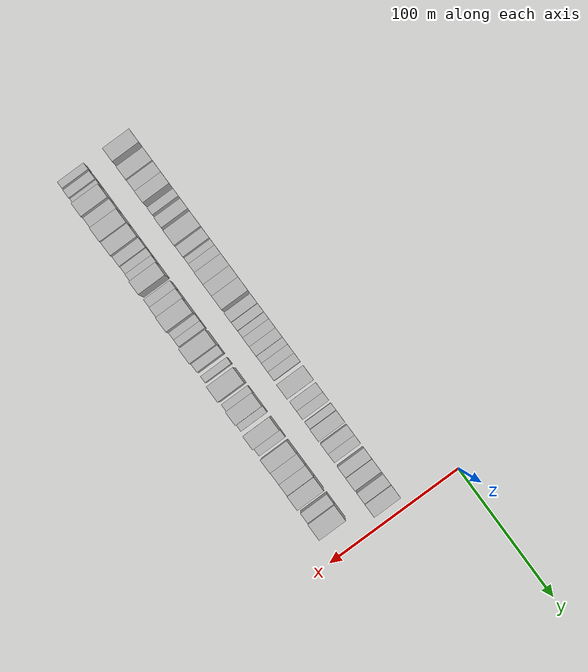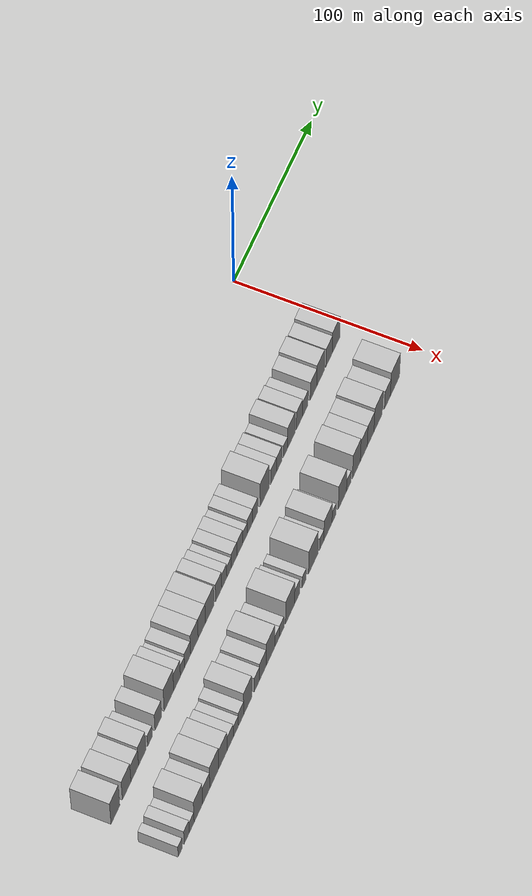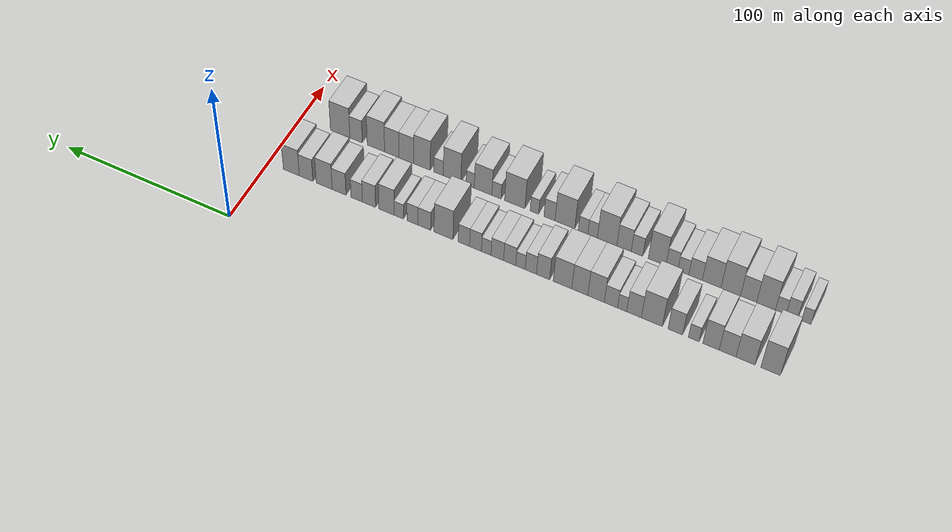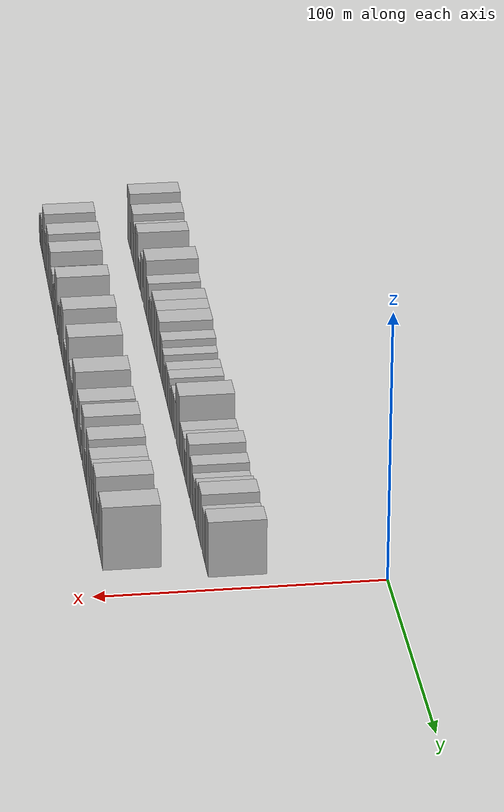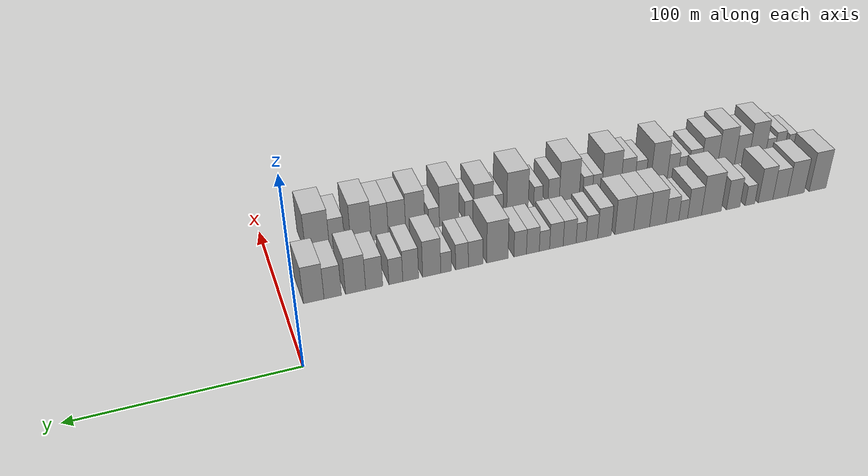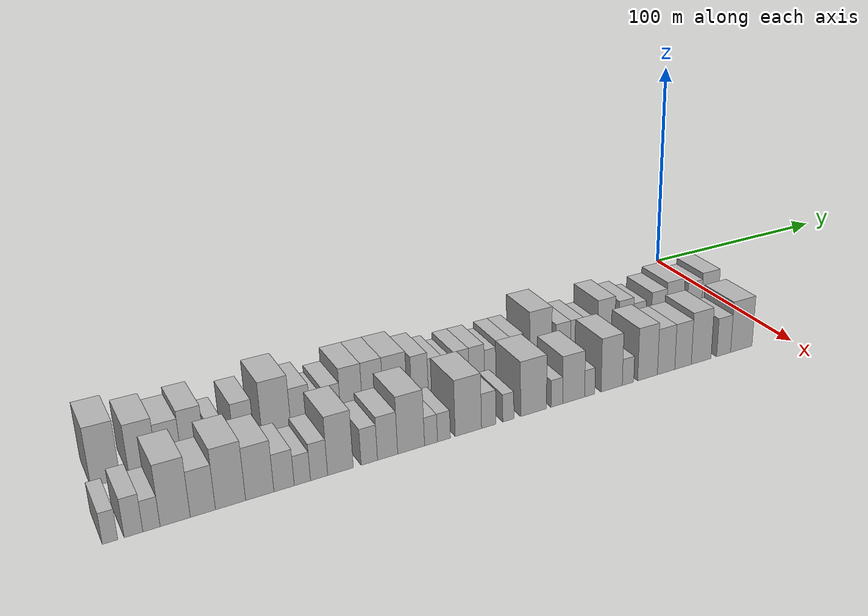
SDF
<sdf version="1.6">
 <world name="default">
  <model name="building_1">
   <static>1</static>
   <pose>50.0000 -281.9514 0 0.000000 0.000000 0.000000</pose>
   <link name="link">
    <pose>0 0 12.00 0 0 0</pose>
    <collision name="collision"><geometry><box><size>20.0000 10.0973 24.0000</size></box></geometry></collision>
    <visual name="visual">
     <cast_shadows>0</cast_shadows>
     <geometry><box><size>20.0000 10.0973 24.0000</size></box></geometry>
     <material>
      <script>
       <uri>model://HANNAS_wall/materials/scripts</uri>
       <uri>model://HANNAS_wall/materials/textures</uri>
       <name>vrc/HANNAS_wall</name>
      </script>
     </material>
    </visual>
   </link>
  </model>
  <model name="building_2">
   <static>1</static>
   <pose>50.0000 -268.9650 0 0.000000 0.000000 0.000000</pose>
   <link name="link">
    <pose>0 0 10.50 0 0 0</pose>
    <collision name="collision"><geometry><box><size>20.0000 9.8755 21.0000</size></box></geometry></collision>
    <visual name="visual">
     <cast_shadows>0</cast_shadows>
     <geometry><box><size>20.0000 9.8755 21.0000</size></box></geometry>
     <material>
      <script>
       <uri>model://HANNAS_wall/materials/scripts</uri>
       <uri>model://HANNAS_wall/materials/textures</uri>
       <name>vrc/HANNAS_wall</name>
      </script>
     </material>
    </visual>
   </link>
  </model>
  <model name="building_3">
   <static>1</static>
   <pose>50.0000 -259.6310 0 0.000000 0.000000 0.000000</pose>
   <link name="link">
    <pose>0 0 9.00 0 0 0</pose>
    <collision name="collision"><geometry><box><size>20.0000 8.7925 18.0000</size></box></geometry></collision>
    <visual name="visual">
     <cast_shadows>0</cast_shadows>
     <geometry><box><size>20.0000 8.7925 18.0000</size></box></geometry>
     <material>
      <script>
       <uri>model://HANNAS_wall/materials/scripts</uri>
       <uri>model://HANNAS_wall/materials/textures</uri>
       <name>vrc/HANNAS_wall</name>
      </script>
     </material>
    </visual>
   </link>
  </model>
  <model name="building_4">
   <static>1</static>
   <pose>50.0000 -250.9372 0 0.000000 0.000000 0.000000</pose>
   <link name="link">
    <pose>0 0 10.50 0 0 0</pose>
    <collision name="collision"><geometry><box><size>20.0000 8.5951 21.0000</size></box></geometry></collision>
    <visual name="visual">
     <cast_shadows>0</cast_shadows>
     <geometry><box><size>20.0000 8.5951 21.0000</size></box></geometry>
     <material>
      <script>
       <uri>model://HANNAS_wall/materials/scripts</uri>
       <uri>model://HANNAS_wall/materials/textures</uri>
       <name>vrc/HANNAS_wall</name>
      </script>
     </material>
    </visual>
   </link>
  </model>
  <model name="building_5">
   <static>1</static>
   <pose>50.0000 -241.8137 0 0.000000 0.000000 0.000000</pose>
   <link name="link">
    <pose>0 0 6.00 0 0 0</pose>
    <collision name="collision"><geometry><box><size>20.0000 5.6519 12.0000</size></box></geometry></collision>
    <visual name="visual">
     <cast_shadows>0</cast_shadows>
     <geometry><box><size>20.0000 5.6519 12.0000</size></box></geometry>
     <material>
      <script>
       <uri>model://HANNAS_wall/materials/scripts</uri>
       <uri>model://HANNAS_wall/materials/textures</uri>
       <name>vrc/HANNAS_wall</name>
      </script>
     </material>
    </visual>
   </link>
  </model>
  <model name="building_6">
   <static>1</static>
   <pose>50.0000 -232.0887 0 0.000000 0.000000 0.000000</pose>
   <link name="link">
    <pose>0 0 9.00 0 0 0</pose>
    <collision name="collision"><geometry><box><size>20.0000 7.7981 18.0000</size></box></geometry></collision>
    <visual name="visual">
     <cast_shadows>0</cast_shadows>
     <geometry><box><size>20.0000 7.7981 18.0000</size></box></geometry>
     <material>
      <script>
       <uri>model://HANNAS_wall/materials/scripts</uri>
       <uri>model://HANNAS_wall/materials/textures</uri>
       <name>vrc/HANNAS_wall</name>
      </script>
     </material>
    </visual>
   </link>
  </model>
  <model name="building_7">
   <static>1</static>
   <pose>50.0000 -219.5472 0 0.000000 0.000000 0.000000</pose>
   <link name="link">
    <pose>0 0 12.00 0 0 0</pose>
    <collision name="collision"><geometry><box><size>20.0000 11.2847 24.0000</size></box></geometry></collision>
    <visual name="visual">
     <cast_shadows>0</cast_shadows>
     <geometry><box><size>20.0000 11.2847 24.0000</size></box></geometry>
     <material>
      <script>
       <uri>model://HANNAS_wall/materials/scripts</uri>
       <uri>model://HANNAS_wall/materials/textures</uri>
       <name>vrc/HANNAS_wall</name>
      </script>
     </material>
    </visual>
   </link>
  </model>
  <model name="building_8">
   <static>1</static>
   <pose>50.0000 -209.9635 0 0.000000 0.000000 0.000000</pose>
   <link name="link">
    <pose>0 0 9.00 0 0 0</pose>
    <collision name="collision"><geometry><box><size>20.0000 7.8828 18.0000</size></box></geometry></collision>
    <visual name="visual">
     <cast_shadows>0</cast_shadows>
     <geometry><box><size>20.0000 7.8828 18.0000</size></box></geometry>
     <material>
      <script>
       <uri>model://HANNAS_wall/materials/scripts</uri>
       <uri>model://HANNAS_wall/materials/textures</uri>
       <name>vrc/HANNAS_wall</name>
      </script>
     </material>
    </visual>
   </link>
  </model>
  <model name="building_9">
   <static>1</static>
   <pose>50.0000 -203.5387 0 0.000000 0.000000 0.000000</pose>
   <link name="link">
    <pose>0 0 6.00 0 0 0</pose>
    <collision name="collision"><geometry><box><size>20.0000 4.9668 12.0000</size></box></geometry></collision>
    <visual name="visual">
     <cast_shadows>0</cast_shadows>
     <geometry><box><size>20.0000 4.9668 12.0000</size></box></geometry>
     <material>
      <script>
       <uri>model://HANNAS_wall/materials/scripts</uri>
       <uri>model://HANNAS_wall/materials/textures</uri>
       <name>vrc/HANNAS_wall</name>
      </script>
     </material>
    </visual>
   </link>
  </model>
  <model name="building_10">
   <static>1</static>
   <pose>50.0000 -197.4601 0 0.000000 0.000000 0.000000</pose>
   <link name="link">
    <pose>0 0 7.50 0 0 0</pose>
    <collision name="collision"><geometry><box><size>20.0000 7.1904 15.0000</size></box></geometry></collision>
    <visual name="visual">
     <cast_shadows>0</cast_shadows>
     <geometry><box><size>20.0000 7.1904 15.0000</size></box></geometry>
     <material>
      <script>
       <uri>model://HANNAS_wall/materials/scripts</uri>
       <uri>model://HANNAS_wall/materials/textures</uri>
       <name>vrc/HANNAS_wall</name>
      </script>
     </material>
    </visual>
   </link>
  </model>
  <model name="building_11">
   <static>1</static>
   <pose>50.0000 -189.3527 0 0.000000 0.000000 0.000000</pose>
   <link name="link">
    <pose>0 0 10.50 0 0 0</pose>
    <collision name="collision"><geometry><box><size>20.0000 9.0244 21.0000</size></box></geometry></collision>
    <visual name="visual">
     <cast_shadows>0</cast_shadows>
     <geometry><box><size>20.0000 9.0244 21.0000</size></box></geometry>
     <material>
      <script>
       <uri>model://HANNAS_wall/materials/scripts</uri>
       <uri>model://HANNAS_wall/materials/textures</uri>
       <name>vrc/HANNAS_wall</name>
      </script>
     </material>
    </visual>
   </link>
  </model>
  <model name="building_12">
   <static>1</static>
   <pose>50.0000 -180.4518 0 0.000000 0.000000 0.000000</pose>
   <link name="link">
    <pose>0 0 10.50 0 0 0</pose>
    <collision name="collision"><geometry><box><size>20.0000 8.7775 21.0000</size></box></geometry></collision>
    <visual name="visual">
     <cast_shadows>0</cast_shadows>
     <geometry><box><size>20.0000 8.7775 21.0000</size></box></geometry>
     <material>
      <script>
       <uri>model://HANNAS_wall/materials/scripts</uri>
       <uri>model://HANNAS_wall/materials/textures</uri>
       <name>vrc/HANNAS_wall</name>
      </script>
     </material>
    </visual>
   </link>
  </model>
  <model name="building_13">
   <static>1</static>
   <pose>50.0000 -170.9487 0 0.000000 0.000000 0.000000</pose>
   <link name="link">
    <pose>0 0 10.50 0 0 0</pose>
    <collision name="collision"><geometry><box><size>20.0000 10.2286 21.0000</size></box></geometry></collision>
    <visual name="visual">
     <cast_shadows>0</cast_shadows>
     <geometry><box><size>20.0000 10.2286 21.0000</size></box></geometry>
     <material>
      <script>
       <uri>model://HANNAS_wall/materials/scripts</uri>
       <uri>model://HANNAS_wall/materials/textures</uri>
       <name>vrc/HANNAS_wall</name>
      </script>
     </material>
    </visual>
   </link>
  </model>
  <model name="building_14">
   <static>1</static>
   <pose>50.0000 -160.1610 0 0.000000 0.000000 0.000000</pose>
   <link name="link">
    <pose>0 0 9.00 0 0 0</pose>
    <collision name="collision"><geometry><box><size>20.0000 7.3468 18.0000</size></box></geometry></collision>
    <visual name="visual">
     <cast_shadows>0</cast_shadows>
     <geometry><box><size>20.0000 7.3468 18.0000</size></box></geometry>
     <material>
      <script>
       <uri>model://HANNAS_wall/materials/scripts</uri>
       <uri>model://HANNAS_wall/materials/textures</uri>
       <name>vrc/HANNAS_wall</name>
      </script>
     </material>
    </visual>
   </link>
  </model>
  <model name="building_15">
   <static>1</static>
   <pose>50.0000 -153.3467 0 0.000000 0.000000 0.000000</pose>
   <link name="link">
    <pose>0 0 7.50 0 0 0</pose>
    <collision name="collision"><geometry><box><size>20.0000 6.2819 15.0000</size></box></geometry></collision>
    <visual name="visual">
     <cast_shadows>0</cast_shadows>
     <geometry><box><size>20.0000 6.2819 15.0000</size></box></geometry>
     <material>
      <script>
       <uri>model://HANNAS_wall/materials/scripts</uri>
       <uri>model://HANNAS_wall/materials/textures</uri>
       <name>vrc/HANNAS_wall</name>
      </script>
     </material>
    </visual>
   </link>
  </model>
  <model name="building_16">
   <static>1</static>
   <pose>50.0000 -147.5695 0 0.000000 0.000000 0.000000</pose>
   <link name="link">
    <pose>0 0 6.00 0 0 0</pose>
    <collision name="collision"><geometry><box><size>20.0000 5.2724 12.0000</size></box></geometry></collision>
    <visual name="visual">
     <cast_shadows>0</cast_shadows>
     <geometry><box><size>20.0000 5.2724 12.0000</size></box></geometry>
     <material>
      <script>
       <uri>model://HANNAS_wall/materials/scripts</uri>
       <uri>model://HANNAS_wall/materials/textures</uri>
       <name>vrc/HANNAS_wall</name>
      </script>
     </material>
    </visual>
   </link>
  </model>
  <model name="building_17">
   <static>1</static>
   <pose>50.0000 -141.4911 0 0.000000 0.000000 0.000000</pose>
   <link name="link">
    <pose>0 0 7.50 0 0 0</pose>
    <collision name="collision"><geometry><box><size>20.0000 6.8844 15.0000</size></box></geometry></collision>
    <visual name="visual">
     <cast_shadows>0</cast_shadows>
     <geometry><box><size>20.0000 6.8844 15.0000</size></box></geometry>
     <material>
      <script>
       <uri>model://HANNAS_wall/materials/scripts</uri>
       <uri>model://HANNAS_wall/materials/textures</uri>
       <name>vrc/HANNAS_wall</name>
      </script>
     </material>
    </visual>
   </link>
  </model>
  <model name="building_18">
   <static>1</static>
   <pose>50.0000 -134.4812 0 0.000000 0.000000 0.000000</pose>
   <link name="link">
    <pose>0 0 7.50 0 0 0</pose>
    <collision name="collision"><geometry><box><size>20.0000 7.1355 15.0000</size></box></geometry></collision>
    <visual name="visual">
     <cast_shadows>0</cast_shadows>
     <geometry><box><size>20.0000 7.1355 15.0000</size></box></geometry>
     <material>
      <script>
       <uri>model://HANNAS_wall/materials/scripts</uri>
       <uri>model://HANNAS_wall/materials/textures</uri>
       <name>vrc/HANNAS_wall</name>
      </script>
     </material>
    </visual>
   </link>
  </model>
  <model name="building_19">
   <static>1</static>
   <pose>50.0000 -128.2064 0 0.000000 0.000000 0.000000</pose>
   <link name="link">
    <pose>0 0 6.00 0 0 0</pose>
    <collision name="collision"><geometry><box><size>20.0000 5.4142 12.0000</size></box></geometry></collision>
    <visual name="visual">
     <cast_shadows>0</cast_shadows>
     <geometry><box><size>20.0000 5.4142 12.0000</size></box></geometry>
     <material>
      <script>
       <uri>model://HANNAS_wall/materials/scripts</uri>
       <uri>model://HANNAS_wall/materials/textures</uri>
       <name>vrc/HANNAS_wall</name>
      </script>
     </material>
    </visual>
   </link>
  </model>
  <model name="building_20">
   <static>1</static>
   <pose>50.0000 -122.1646 0 0.000000 0.000000 0.000000</pose>
   <link name="link">
    <pose>0 0 7.50 0 0 0</pose>
    <collision name="collision"><geometry><box><size>20.0000 6.6693 15.0000</size></box></geometry></collision>
    <visual name="visual">
     <cast_shadows>0</cast_shadows>
     <geometry><box><size>20.0000 6.6693 15.0000</size></box></geometry>
     <material>
      <script>
       <uri>model://HANNAS_wall/materials/scripts</uri>
       <uri>model://HANNAS_wall/materials/textures</uri>
       <name>vrc/HANNAS_wall</name>
      </script>
     </material>
    </visual>
   </link>
  </model>
  <model name="building_21">
   <static>1</static>
   <pose>50.0000 -115.5677 0 0.000000 0.000000 0.000000</pose>
   <link name="link">
    <pose>0 0 7.50 0 0 0</pose>
    <collision name="collision"><geometry><box><size>20.0000 6.5244 15.0000</size></box></geometry></collision>
    <visual name="visual">
     <cast_shadows>0</cast_shadows>
     <geometry><box><size>20.0000 6.5244 15.0000</size></box></geometry>
     <material>
      <script>
       <uri>model://HANNAS_wall/materials/scripts</uri>
       <uri>model://HANNAS_wall/materials/textures</uri>
       <name>vrc/HANNAS_wall</name>
      </script>
     </material>
    </visual>
   </link>
  </model>
  <model name="building_22">
   <static>1</static>
   <pose>50.0000 -103.8464 0 0.000000 0.000000 0.000000</pose>
   <link name="link">
    <pose>0 0 12.00 0 0 0</pose>
    <collision name="collision"><geometry><box><size>20.0000 10.9184 24.0000</size></box></geometry></collision>
    <visual name="visual">
     <cast_shadows>0</cast_shadows>
     <geometry><box><size>20.0000 10.9184 24.0000</size></box></geometry>
     <material>
      <script>
       <uri>model://HANNAS_wall/materials/scripts</uri>
       <uri>model://HANNAS_wall/materials/textures</uri>
       <name>vrc/HANNAS_wall</name>
      </script>
     </material>
    </visual>
   </link>
  </model>
  <model name="building_23">
   <static>1</static>
   <pose>50.0000 -92.7179 0 0.000000 0.000000 0.000000</pose>
   <link name="link">
    <pose>0 0 7.50 0 0 0</pose>
    <collision name="collision"><geometry><box><size>20.0000 7.3385 15.0000</size></box></geometry></collision>
    <visual name="visual">
     <cast_shadows>0</cast_shadows>
     <geometry><box><size>20.0000 7.3385 15.0000</size></box></geometry>
     <material>
      <script>
       <uri>model://HANNAS_wall/materials/scripts</uri>
       <uri>model://HANNAS_wall/materials/textures</uri>
       <name>vrc/HANNAS_wall</name>
      </script>
     </material>
    </visual>
   </link>
  </model>
  <model name="building_24">
   <static>1</static>
   <pose>50.0000 -85.8513 0 0.000000 0.000000 0.000000</pose>
   <link name="link">
    <pose>0 0 7.50 0 0 0</pose>
    <collision name="collision"><geometry><box><size>20.0000 6.3947 15.0000</size></box></geometry></collision>
    <visual name="visual">
     <cast_shadows>0</cast_shadows>
     <geometry><box><size>20.0000 6.3947 15.0000</size></box></geometry>
     <material>
      <script>
       <uri>model://HANNAS_wall/materials/scripts</uri>
       <uri>model://HANNAS_wall/materials/textures</uri>
       <name>vrc/HANNAS_wall</name>
      </script>
     </material>
    </visual>
   </link>
  </model>
  <model name="building_25">
   <static>1</static>
   <pose>50.0000 -77.9484 0 0.000000 0.000000 0.000000</pose>
   <link name="link">
    <pose>0 0 6.00 0 0 0</pose>
    <collision name="collision"><geometry><box><size>20.0000 5.4112 12.0000</size></box></geometry></collision>
    <visual name="visual">
     <cast_shadows>0</cast_shadows>
     <geometry><box><size>20.0000 5.4112 12.0000</size></box></geometry>
     <material>
      <script>
       <uri>model://HANNAS_wall/materials/scripts</uri>
       <uri>model://HANNAS_wall/materials/textures</uri>
       <name>vrc/HANNAS_wall</name>
      </script>
     </material>
    </visual>
   </link>
  </model>
  <model name="building_26">
   <static>1</static>
   <pose>50.0000 -70.7677 0 0.000000 0.000000 0.000000</pose>
   <link name="link">
    <pose>0 0 10.50 0 0 0</pose>
    <collision name="collision"><geometry><box><size>20.0000 8.9503 21.0000</size></box></geometry></collision>
    <visual name="visual">
     <cast_shadows>0</cast_shadows>
     <geometry><box><size>20.0000 8.9503 21.0000</size></box></geometry>
     <material>
      <script>
       <uri>model://HANNAS_wall/materials/scripts</uri>
       <uri>model://HANNAS_wall/materials/textures</uri>
       <name>vrc/HANNAS_wall</name>
      </script>
     </material>
    </visual>
   </link>
  </model>
  <model name="building_27">
   <static>1</static>
   <pose>50.0000 -60.4169 0 0.000000 0.000000 0.000000</pose>
   <link name="link">
    <pose>0 0 9.00 0 0 0</pose>
    <collision name="collision"><geometry><box><size>20.0000 7.7512 18.0000</size></box></geometry></collision>
    <visual name="visual">
     <cast_shadows>0</cast_shadows>
     <geometry><box><size>20.0000 7.7512 18.0000</size></box></geometry>
     <material>
      <script>
       <uri>model://HANNAS_wall/materials/scripts</uri>
       <uri>model://HANNAS_wall/materials/textures</uri>
       <name>vrc/HANNAS_wall</name>
      </script>
     </material>
    </visual>
   </link>
  </model>
  <model name="building_28">
   <static>1</static>
   <pose>50.0000 -53.1641 0 0.000000 0.000000 0.000000</pose>
   <link name="link">
    <pose>0 0 7.50 0 0 0</pose>
    <collision name="collision"><geometry><box><size>20.0000 6.7545 15.0000</size></box></geometry></collision>
    <visual name="visual">
     <cast_shadows>0</cast_shadows>
     <geometry><box><size>20.0000 6.7545 15.0000</size></box></geometry>
     <material>
      <script>
       <uri>model://HANNAS_wall/materials/scripts</uri>
       <uri>model://HANNAS_wall/materials/textures</uri>
       <name>vrc/HANNAS_wall</name>
      </script>
     </material>
    </visual>
   </link>
  </model>
  <model name="building_29">
   <static>1</static>
   <pose>50.0000 -42.6650 0 0.000000 0.000000 0.000000</pose>
   <link name="link">
    <pose>0 0 9.00 0 0 0</pose>
    <collision name="collision"><geometry><box><size>20.0000 8.2437 18.0000</size></box></geometry></collision>
    <visual name="visual">
     <cast_shadows>0</cast_shadows>
     <geometry><box><size>20.0000 8.2437 18.0000</size></box></geometry>
     <material>
      <script>
       <uri>model://HANNAS_wall/materials/scripts</uri>
       <uri>model://HANNAS_wall/materials/textures</uri>
       <name>vrc/HANNAS_wall</name>
      </script>
     </material>
    </visual>
   </link>
  </model>
  <model name="building_30">
   <static>1</static>
   <pose>50.0000 -33.7552 0 0.000000 0.000000 0.000000</pose>
   <link name="link">
    <pose>0 0 10.50 0 0 0</pose>
    <collision name="collision"><geometry><box><size>20.0000 9.5758 21.0000</size></box></geometry></collision>
    <visual name="visual">
     <cast_shadows>0</cast_shadows>
     <geometry><box><size>20.0000 9.5758 21.0000</size></box></geometry>
     <material>
      <script>
       <uri>model://HANNAS_wall/materials/scripts</uri>
       <uri>model://HANNAS_wall/materials/textures</uri>
       <name>vrc/HANNAS_wall</name>
      </script>
     </material>
    </visual>
   </link>
  </model>
  <model name="building_31">
   <static>1</static>
   <pose>50.0000 -22.8692 0 0.000000 0.000000 0.000000</pose>
   <link name="link">
    <pose>0 0 9.00 0 0 0</pose>
    <collision name="collision"><geometry><box><size>20.0000 8.1962 18.0000</size></box></geometry></collision>
    <visual name="visual">
     <cast_shadows>0</cast_shadows>
     <geometry><box><size>20.0000 8.1962 18.0000</size></box></geometry>
     <material>
      <script>
       <uri>model://HANNAS_wall/materials/scripts</uri>
       <uri>model://HANNAS_wall/materials/textures</uri>
       <name>vrc/HANNAS_wall</name>
      </script>
     </material>
    </visual>
   </link>
  </model>
  <model name="building_32">
   <static>1</static>
   <pose>50.0000 -13.9225 0 0.000000 0.000000 0.000000</pose>
   <link name="link">
    <pose>0 0 10.50 0 0 0</pose>
    <collision name="collision"><geometry><box><size>20.0000 9.6973 21.0000</size></box></geometry></collision>
    <visual name="visual">
     <cast_shadows>0</cast_shadows>
     <geometry><box><size>20.0000 9.6973 21.0000</size></box></geometry>
     <material>
      <script>
       <uri>model://HANNAS_wall/materials/scripts</uri>
       <uri>model://HANNAS_wall/materials/textures</uri>
       <name>vrc/HANNAS_wall</name>
      </script>
     </material>
    </visual>
   </link>
  </model>
  <model name="building_67">
   <static>1</static>
   <pose>85.0000 -287.5393 0 0.000000 0.000000 0.000000</pose>
   <link name="link">
    <pose>0 0 6.00 0 0 0</pose>
    <collision name="collision"><geometry><box><size>20.0000 4.9214 12.0000</size></box></geometry></collision>
    <visual name="visual">
     <cast_shadows>0</cast_shadows>
     <geometry><box><size>20.0000 4.9214 12.0000</size></box></geometry>
     <material>
      <script>
       <uri>model://HANNAS_wall/materials/scripts</uri>
       <uri>model://HANNAS_wall/materials/textures</uri>
       <name>vrc/HANNAS_wall</name>
      </script>
     </material>
    </visual>
   </link>
  </model>
  <model name="building_68">
   <static>1</static>
   <pose>85.0000 -280.0650 0 0.000000 0.000000 0.000000</pose>
   <link name="link">
    <pose>0 0 7.50 0 0 0</pose>
    <collision name="collision"><geometry><box><size>20.0000 6.0271 15.0000</size></box></geometry></collision>
    <visual name="visual">
     <cast_shadows>0</cast_shadows>
     <geometry><box><size>20.0000 6.0271 15.0000</size></box></geometry>
     <material>
      <script>
       <uri>model://HANNAS_wall/materials/scripts</uri>
       <uri>model://HANNAS_wall/materials/textures</uri>
       <name>vrc/HANNAS_wall</name>
      </script>
     </material>
    </visual>
   </link>
  </model>
  <model name="building_69">
   <static>1</static>
   <pose>85.0000 -274.2433 0 0.000000 0.000000 0.000000</pose>
   <link name="link">
    <pose>0 0 6.00 0 0 0</pose>
    <collision name="collision"><geometry><box><size>20.0000 5.6163 12.0000</size></box></geometry></collision>
    <visual name="visual">
     <cast_shadows>0</cast_shadows>
     <geometry><box><size>20.0000 5.6163 12.0000</size></box></geometry>
     <material>
      <script>
       <uri>model://HANNAS_wall/materials/scripts</uri>
       <uri>model://HANNAS_wall/materials/textures</uri>
       <name>vrc/HANNAS_wall</name>
      </script>
     </material>
    </visual>
   </link>
  </model>
  <model name="building_70">
   <static>1</static>
   <pose>85.0000 -266.4212 0 0.000000 0.000000 0.000000</pose>
   <link name="link">
    <pose>0 0 12.00 0 0 0</pose>
    <collision name="collision"><geometry><box><size>20.0000 10.0279 24.0000</size></box></geometry></collision>
    <visual name="visual">
     <cast_shadows>0</cast_shadows>
     <geometry><box><size>20.0000 10.0279 24.0000</size></box></geometry>
     <material>
      <script>
       <uri>model://HANNAS_wall/materials/scripts</uri>
       <uri>model://HANNAS_wall/materials/textures</uri>
       <name>vrc/HANNAS_wall</name>
      </script>
     </material>
    </visual>
   </link>
  </model>
  <model name="building_71">
   <static>1</static>
   <pose>85.0000 -257.1396 0 0.000000 0.000000 0.000000</pose>
   <link name="link">
    <pose>0 0 9.00 0 0 0</pose>
    <collision name="collision"><geometry><box><size>20.0000 8.5353 18.0000</size></box></geometry></collision>
    <visual name="visual">
     <cast_shadows>0</cast_shadows>
     <geometry><box><size>20.0000 8.5353 18.0000</size></box></geometry>
     <material>
      <script>
       <uri>model://HANNAS_wall/materials/scripts</uri>
       <uri>model://HANNAS_wall/materials/textures</uri>
       <name>vrc/HANNAS_wall</name>
      </script>
     </material>
    </visual>
   </link>
  </model>
  <model name="building_72">
   <static>1</static>
   <pose>85.0000 -247.6335 0 0.000000 0.000000 0.000000</pose>
   <link name="link">
    <pose>0 0 12.00 0 0 0</pose>
    <collision name="collision"><geometry><box><size>20.0000 10.4768 24.0000</size></box></geometry></collision>
    <visual name="visual">
     <cast_shadows>0</cast_shadows>
     <geometry><box><size>20.0000 10.4768 24.0000</size></box></geometry>
     <material>
      <script>
       <uri>model://HANNAS_wall/materials/scripts</uri>
       <uri>model://HANNAS_wall/materials/textures</uri>
       <name>vrc/HANNAS_wall</name>
      </script>
     </material>
    </visual>
   </link>
  </model>
  <model name="building_73">
   <static>1</static>
   <pose>85.0000 -237.3695 0 0.000000 0.000000 0.000000</pose>
   <link name="link">
    <pose>0 0 10.50 0 0 0</pose>
    <collision name="collision"><geometry><box><size>20.0000 10.0512 21.0000</size></box></geometry></collision>
    <visual name="visual">
     <cast_shadows>0</cast_shadows>
     <geometry><box><size>20.0000 10.0512 21.0000</size></box></geometry>
     <material>
      <script>
       <uri>model://HANNAS_wall/materials/scripts</uri>
       <uri>model://HANNAS_wall/materials/textures</uri>
       <name>vrc/HANNAS_wall</name>
      </script>
     </material>
    </visual>
   </link>
  </model>
  <model name="building_74">
   <static>1</static>
   <pose>85.0000 -228.6623 0 0.000000 0.000000 0.000000</pose>
   <link name="link">
    <pose>0 0 7.50 0 0 0</pose>
    <collision name="collision"><geometry><box><size>20.0000 7.3632 15.0000</size></box></geometry></collision>
    <visual name="visual">
     <cast_shadows>0</cast_shadows>
     <geometry><box><size>20.0000 7.3632 15.0000</size></box></geometry>
     <material>
      <script>
       <uri>model://HANNAS_wall/materials/scripts</uri>
       <uri>model://HANNAS_wall/materials/textures</uri>
       <name>vrc/HANNAS_wall</name>
      </script>
     </material>
    </visual>
   </link>
  </model>
  <model name="building_75">
   <static>1</static>
   <pose>85.0000 -221.9935 0 0.000000 0.000000 0.000000</pose>
   <link name="link">
    <pose>0 0 6.00 0 0 0</pose>
    <collision name="collision"><geometry><box><size>20.0000 5.9743 12.0000</size></box></geometry></collision>
    <visual name="visual">
     <cast_shadows>0</cast_shadows>
     <geometry><box><size>20.0000 5.9743 12.0000</size></box></geometry>
     <material>
      <script>
       <uri>model://HANNAS_wall/materials/scripts</uri>
       <uri>model://HANNAS_wall/materials/textures</uri>
       <name>vrc/HANNAS_wall</name>
      </script>
     </material>
    </visual>
   </link>
  </model>
  <model name="building_76">
   <static>1</static>
   <pose>85.0000 -215.7950 0 0.000000 0.000000 0.000000</pose>
   <link name="link">
    <pose>0 0 7.50 0 0 0</pose>
    <collision name="collision"><geometry><box><size>20.0000 6.4229 15.0000</size></box></geometry></collision>
    <visual name="visual">
     <cast_shadows>0</cast_shadows>
     <geometry><box><size>20.0000 6.4229 15.0000</size></box></geometry>
     <material>
      <script>
       <uri>model://HANNAS_wall/materials/scripts</uri>
       <uri>model://HANNAS_wall/materials/textures</uri>
       <name>vrc/HANNAS_wall</name>
      </script>
     </material>
    </visual>
   </link>
  </model>
  <model name="building_77">
   <static>1</static>
   <pose>85.0000 -207.7056 0 0.000000 0.000000 0.000000</pose>
   <link name="link">
    <pose>0 0 12.00 0 0 0</pose>
    <collision name="collision"><geometry><box><size>20.0000 9.7557 24.0000</size></box></geometry></collision>
    <visual name="visual">
     <cast_shadows>0</cast_shadows>
     <geometry><box><size>20.0000 9.7557 24.0000</size></box></geometry>
     <material>
      <script>
       <uri>model://HANNAS_wall/materials/scripts</uri>
       <uri>model://HANNAS_wall/materials/textures</uri>
       <name>vrc/HANNAS_wall</name>
      </script>
     </material>
    </visual>
   </link>
  </model>
  <model name="building_78">
   <static>1</static>
   <pose>85.0000 -196.6338 0 0.000000 0.000000 0.000000</pose>
   <link name="link">
    <pose>0 0 7.50 0 0 0</pose>
    <collision name="collision"><geometry><box><size>20.0000 6.3879 15.0000</size></box></geometry></collision>
    <visual name="visual">
     <cast_shadows>0</cast_shadows>
     <geometry><box><size>20.0000 6.3879 15.0000</size></box></geometry>
     <material>
      <script>
       <uri>model://HANNAS_wall/materials/scripts</uri>
       <uri>model://HANNAS_wall/materials/textures</uri>
       <name>vrc/HANNAS_wall</name>
      </script>
     </material>
    </visual>
   </link>
  </model>
  <model name="building_79">
   <static>1</static>
   <pose>85.0000 -189.4396 0 0.000000 0.000000 0.000000</pose>
   <link name="link">
    <pose>0 0 9.00 0 0 0</pose>
    <collision name="collision"><geometry><box><size>20.0000 8.0004 18.0000</size></box></geometry></collision>
    <visual name="visual">
     <cast_shadows>0</cast_shadows>
     <geometry><box><size>20.0000 8.0004 18.0000</size></box></geometry>
     <material>
      <script>
       <uri>model://HANNAS_wall/materials/scripts</uri>
       <uri>model://HANNAS_wall/materials/textures</uri>
       <name>vrc/HANNAS_wall</name>
      </script>
     </material>
    </visual>
   </link>
  </model>
  <model name="building_80">
   <static>1</static>
   <pose>85.0000 -180.0102 0 0.000000 0.000000 0.000000</pose>
   <link name="link">
    <pose>0 0 12.00 0 0 0</pose>
    <collision name="collision"><geometry><box><size>20.0000 10.8585 24.0000</size></box></geometry></collision>
    <visual name="visual">
     <cast_shadows>0</cast_shadows>
     <geometry><box><size>20.0000 10.8585 24.0000</size></box></geometry>
     <material>
      <script>
       <uri>model://HANNAS_wall/materials/scripts</uri>
       <uri>model://HANNAS_wall/materials/textures</uri>
       <name>vrc/HANNAS_wall</name>
      </script>
     </material>
    </visual>
   </link>
  </model>
  <model name="building_81">
   <static>1</static>
   <pose>85.0000 -171.9192 0 0.000000 0.000000 0.000000</pose>
   <link name="link">
    <pose>0 0 6.00 0 0 0</pose>
    <collision name="collision"><geometry><box><size>20.0000 5.3234 12.0000</size></box></geometry></collision>
    <visual name="visual">
     <cast_shadows>0</cast_shadows>
     <geometry><box><size>20.0000 5.3234 12.0000</size></box></geometry>
     <material>
      <script>
       <uri>model://HANNAS_wall/materials/scripts</uri>
       <uri>model://HANNAS_wall/materials/textures</uri>
       <name>vrc/HANNAS_wall</name>
      </script>
     </material>
    </visual>
   </link>
  </model>
  <model name="building_82">
   <static>1</static>
   <pose>85.0000 -166.5647 0 0.000000 0.000000 0.000000</pose>
   <link name="link">
    <pose>0 0 6.00 0 0 0</pose>
    <collision name="collision"><geometry><box><size>20.0000 5.3856 12.0000</size></box></geometry></collision>
    <visual name="visual">
     <cast_shadows>0</cast_shadows>
     <geometry><box><size>20.0000 5.3856 12.0000</size></box></geometry>
     <material>
      <script>
       <uri>model://HANNAS_wall/materials/scripts</uri>
       <uri>model://HANNAS_wall/materials/textures</uri>
       <name>vrc/HANNAS_wall</name>
      </script>
     </material>
    </visual>
   </link>
  </model>
  <model name="building_83">
   <static>1</static>
   <pose>85.0000 -156.2718 0 0.000000 0.000000 0.000000</pose>
   <link name="link">
    <pose>0 0 12.00 0 0 0</pose>
    <collision name="collision"><geometry><box><size>20.0000 11.2002 24.0000</size></box></geometry></collision>
    <visual name="visual">
     <cast_shadows>0</cast_shadows>
     <geometry><box><size>20.0000 11.2002 24.0000</size></box></geometry>
     <material>
      <script>
       <uri>model://HANNAS_wall/materials/scripts</uri>
       <uri>model://HANNAS_wall/materials/textures</uri>
       <name>vrc/HANNAS_wall</name>
      </script>
     </material>
    </visual>
   </link>
  </model>
  <model name="building_84">
   <static>1</static>
   <pose>85.0000 -147.5368 0 0.000000 0.000000 0.000000</pose>
   <link name="link">
    <pose>0 0 7.50 0 0 0</pose>
    <collision name="collision"><geometry><box><size>20.0000 6.2699 15.0000</size></box></geometry></collision>
    <visual name="visual">
     <cast_shadows>0</cast_shadows>
     <geometry><box><size>20.0000 6.2699 15.0000</size></box></geometry>
     <material>
      <script>
       <uri>model://HANNAS_wall/materials/scripts</uri>
       <uri>model://HANNAS_wall/materials/textures</uri>
       <name>vrc/HANNAS_wall</name>
      </script>
     </material>
    </visual>
   </link>
  </model>
  <model name="building_85">
   <static>1</static>
   <pose>85.0000 -138.9657 0 0.000000 0.000000 0.000000</pose>
   <link name="link">
    <pose>0 0 6.00 0 0 0</pose>
    <collision name="collision"><geometry><box><size>20.0000 4.8723 12.0000</size></box></geometry></collision>
    <visual name="visual">
     <cast_shadows>0</cast_shadows>
     <geometry><box><size>20.0000 4.8723 12.0000</size></box></geometry>
     <material>
      <script>
       <uri>model://HANNAS_wall/materials/scripts</uri>
       <uri>model://HANNAS_wall/materials/textures</uri>
       <name>vrc/HANNAS_wall</name>
      </script>
     </material>
    </visual>
   </link>
  </model>
  <model name="building_86">
   <static>1</static>
   <pose>85.0000 -127.6706 0 0.000000 0.000000 0.000000</pose>
   <link name="link">
    <pose>0 0 12.00 0 0 0</pose>
    <collision name="collision"><geometry><box><size>20.0000 11.7180 24.0000</size></box></geometry></collision>
    <visual name="visual">
     <cast_shadows>0</cast_shadows>
     <geometry><box><size>20.0000 11.7180 24.0000</size></box></geometry>
     <material>
      <script>
       <uri>model://HANNAS_wall/materials/scripts</uri>
       <uri>model://HANNAS_wall/materials/textures</uri>
       <name>vrc/HANNAS_wall</name>
      </script>
     </material>
    </visual>
   </link>
  </model>
  <model name="building_87">
   <static>1</static>
   <pose>85.0000 -117.1279 0 0.000000 0.000000 0.000000</pose>
   <link name="link">
    <pose>0 0 6.00 0 0 0</pose>
    <collision name="collision"><geometry><box><size>20.0000 5.3674 12.0000</size></box></geometry></collision>
    <visual name="visual">
     <cast_shadows>0</cast_shadows>
     <geometry><box><size>20.0000 5.3674 12.0000</size></box></geometry>
     <material>
      <script>
       <uri>model://HANNAS_wall/materials/scripts</uri>
       <uri>model://HANNAS_wall/materials/textures</uri>
       <name>vrc/HANNAS_wall</name>
      </script>
     </material>
    </visual>
   </link>
  </model>
  <model name="building_88">
   <static>1</static>
   <pose>85.0000 -109.2899 0 0.000000 0.000000 0.000000</pose>
   <link name="link">
    <pose>0 0 10.50 0 0 0</pose>
    <collision name="collision"><geometry><box><size>20.0000 10.3087 21.0000</size></box></geometry></collision>
    <visual name="visual">
     <cast_shadows>0</cast_shadows>
     <geometry><box><size>20.0000 10.3087 21.0000</size></box></geometry>
     <material>
      <script>
       <uri>model://HANNAS_wall/materials/scripts</uri>
       <uri>model://HANNAS_wall/materials/textures</uri>
       <name>vrc/HANNAS_wall</name>
      </script>
     </material>
    </visual>
   </link>
  </model>
  <model name="building_89">
   <static>1</static>
   <pose>85.0000 -101.7252 0 0.000000 0.000000 0.000000</pose>
   <link name="link">
    <pose>0 0 6.00 0 0 0</pose>
    <collision name="collision"><geometry><box><size>20.0000 4.8205 12.0000</size></box></geometry></collision>
    <visual name="visual">
     <cast_shadows>0</cast_shadows>
     <geometry><box><size>20.0000 4.8205 12.0000</size></box></geometry>
     <material>
      <script>
       <uri>model://HANNAS_wall/materials/scripts</uri>
       <uri>model://HANNAS_wall/materials/textures</uri>
       <name>vrc/HANNAS_wall</name>
      </script>
     </material>
    </visual>
   </link>
  </model>
  <model name="building_90">
   <static>1</static>
   <pose>85.0000 -91.1548 0 0.000000 0.000000 0.000000</pose>
   <link name="link">
    <pose>0 0 12.00 0 0 0</pose>
    <collision name="collision"><geometry><box><size>20.0000 10.3204 24.0000</size></box></geometry></collision>
    <visual name="visual">
     <cast_shadows>0</cast_shadows>
     <geometry><box><size>20.0000 10.3204 24.0000</size></box></geometry>
     <material>
      <script>
       <uri>model://HANNAS_wall/materials/scripts</uri>
       <uri>model://HANNAS_wall/materials/textures</uri>
       <name>vrc/HANNAS_wall</name>
      </script>
     </material>
    </visual>
   </link>
  </model>
  <model name="building_91">
   <static>1</static>
   <pose>85.0000 -83.1729 0 0.000000 0.000000 0.000000</pose>
   <link name="link">
    <pose>0 0 6.00 0 0 0</pose>
    <collision name="collision"><geometry><box><size>20.0000 5.6435 12.0000</size></box></geometry></collision>
    <visual name="visual">
     <cast_shadows>0</cast_shadows>
     <geometry><box><size>20.0000 5.6435 12.0000</size></box></geometry>
     <material>
      <script>
       <uri>model://HANNAS_wall/materials/scripts</uri>
       <uri>model://HANNAS_wall/materials/textures</uri>
       <name>vrc/HANNAS_wall</name>
      </script>
     </material>
    </visual>
   </link>
  </model>
  <model name="building_92">
   <static>1</static>
   <pose>85.0000 -73.3948 0 0.000000 0.000000 0.000000</pose>
   <link name="link">
    <pose>0 0 12.00 0 0 0</pose>
    <collision name="collision"><geometry><box><size>20.0000 9.9127 24.0000</size></box></geometry></collision>
    <visual name="visual">
     <cast_shadows>0</cast_shadows>
     <geometry><box><size>20.0000 9.9127 24.0000</size></box></geometry>
     <material>
      <script>
       <uri>model://HANNAS_wall/materials/scripts</uri>
       <uri>model://HANNAS_wall/materials/textures</uri>
       <name>vrc/HANNAS_wall</name>
      </script>
     </material>
    </visual>
   </link>
  </model>
  <model name="building_93">
   <static>1</static>
   <pose>85.0000 -63.9977 0 0.000000 0.000000 0.000000</pose>
   <link name="link">
    <pose>0 0 10.50 0 0 0</pose>
    <collision name="collision"><geometry><box><size>20.0000 8.8815 21.0000</size></box></geometry></collision>
    <visual name="visual">
     <cast_shadows>0</cast_shadows>
     <geometry><box><size>20.0000 8.8815 21.0000</size></box></geometry>
     <material>
      <script>
       <uri>model://HANNAS_wall/materials/scripts</uri>
       <uri>model://HANNAS_wall/materials/textures</uri>
       <name>vrc/HANNAS_wall</name>
      </script>
     </material>
    </visual>
   </link>
  </model>
  <model name="building_94">
   <static>1</static>
   <pose>85.0000 -55.2545 0 0.000000 0.000000 0.000000</pose>
   <link name="link">
    <pose>0 0 10.50 0 0 0</pose>
    <collision name="collision"><geometry><box><size>20.0000 8.6048 21.0000</size></box></geometry></collision>
    <visual name="visual">
     <cast_shadows>0</cast_shadows>
     <geometry><box><size>20.0000 8.6048 21.0000</size></box></geometry>
     <material>
      <script>
       <uri>model://HANNAS_wall/materials/scripts</uri>
       <uri>model://HANNAS_wall/materials/textures</uri>
       <name>vrc/HANNAS_wall</name>
      </script>
     </material>
    </visual>
   </link>
  </model>
  <model name="building_95">
   <static>1</static>
   <pose>85.0000 -45.7038 0 0.000000 0.000000 0.000000</pose>
   <link name="link">
    <pose>0 0 12.00 0 0 0</pose>
    <collision name="collision"><geometry><box><size>20.0000 10.4966 24.0000</size></box></geometry></collision>
    <visual name="visual">
     <cast_shadows>0</cast_shadows>
     <geometry><box><size>20.0000 10.4966 24.0000</size></box></geometry>
     <material>
      <script>
       <uri>model://HANNAS_wall/materials/scripts</uri>
       <uri>model://HANNAS_wall/materials/textures</uri>
       <name>vrc/HANNAS_wall</name>
      </script>
     </material>
    </visual>
   </link>
  </model>
  <model name="building_96">
   <static>1</static>
   <pose>85.0000 -33.6743 0 0.000000 0.000000 0.000000</pose>
   <link name="link">
    <pose>0 0 9.00 0 0 0</pose>
    <collision name="collision"><geometry><box><size>20.0000 7.5624 18.0000</size></box></geometry></collision>
    <visual name="visual">
     <cast_shadows>0</cast_shadows>
     <geometry><box><size>20.0000 7.5624 18.0000</size></box></geometry>
     <material>
      <script>
       <uri>model://HANNAS_wall/materials/scripts</uri>
       <uri>model://HANNAS_wall/materials/textures</uri>
       <name>vrc/HANNAS_wall</name>
      </script>
     </material>
    </visual>
   </link>
  </model>
  <model name="building_97">
   <static>1</static>
   <pose>85.0000 -23.9646 0 0.000000 0.000000 0.000000</pose>
   <link name="link">
    <pose>0 0 12.00 0 0 0</pose>
    <collision name="collision"><geometry><box><size>20.0000 11.8571 24.0000</size></box></geometry></collision>
    <visual name="visual">
     <cast_shadows>0</cast_shadows>
     <geometry><box><size>20.0000 11.8571 24.0000</size></box></geometry>
     <material>
      <script>
       <uri>model://HANNAS_wall/materials/scripts</uri>
       <uri>model://HANNAS_wall/materials/textures</uri>
       <name>vrc/HANNAS_wall</name>
      </script>
     </material>
    </visual>
   </link>
  </model>
 </world>
</sdf>
